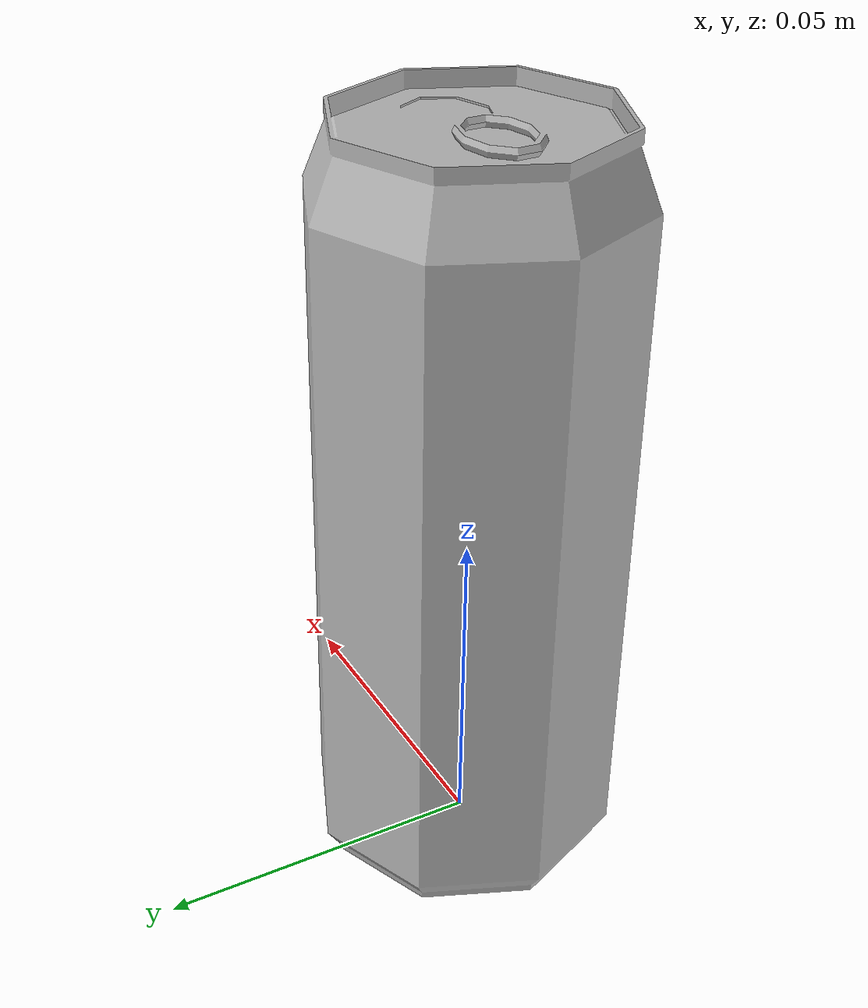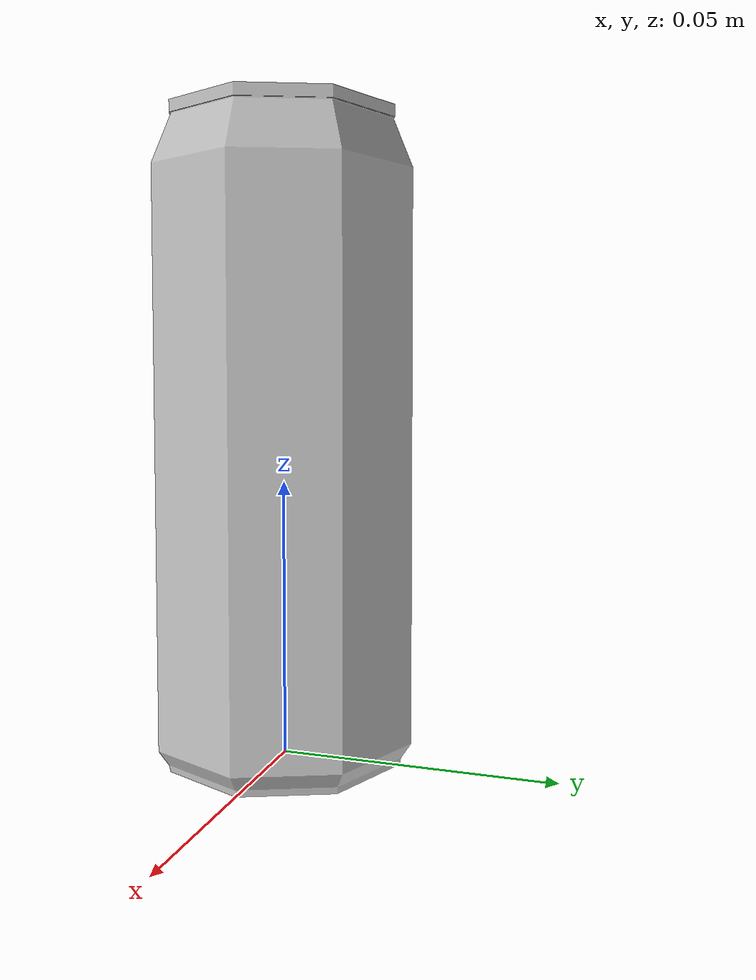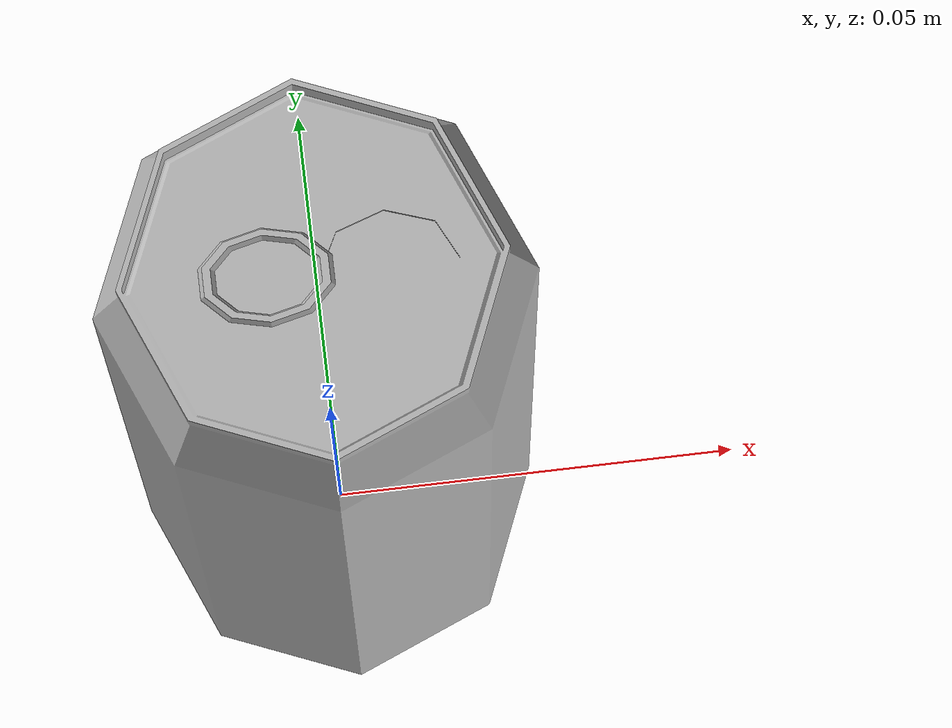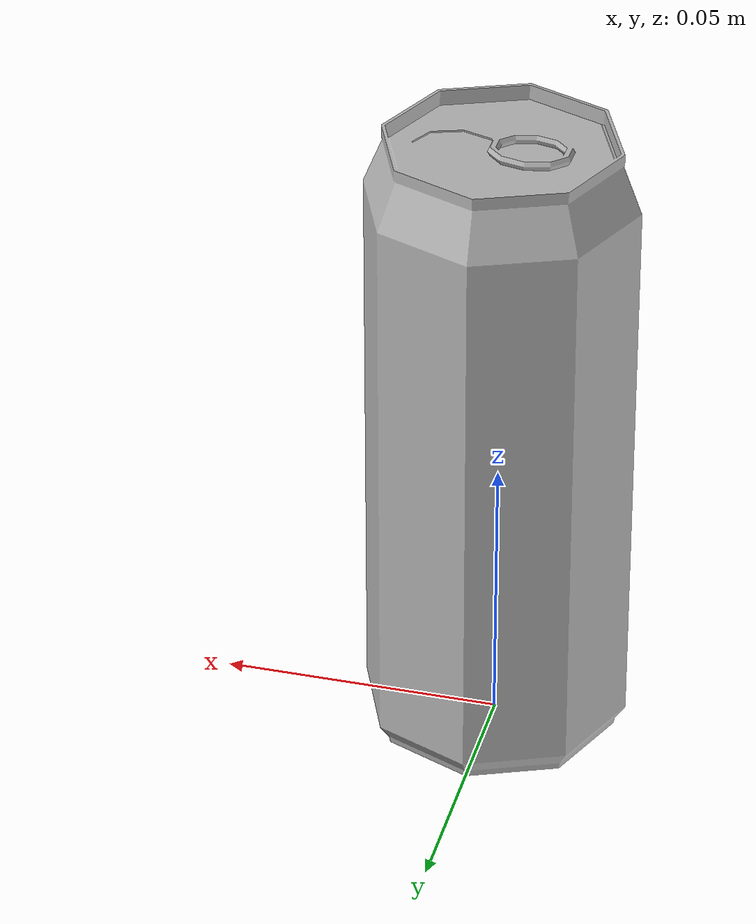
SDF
<?xml version="1.0"?>
<sdf version="1.6">
  <model name="Coke">
    <static>true</static>
    <link name="link">
      <!-- 無碰撞：純視覺 + SetModelState 驅動，與 red_block 相同機制 -->
      <visual name="vis">
        <geometry>
          <mesh>
            <uri>model://coke/meshes/coke.obj</uri>
            <!-- scale 0.8 → 高 11.6cm × 寬 4.8cm，貼圖貼圖已放在 meshes/ -->
            <scale>0.8 0.8 0.8</scale>
          </mesh>
        </geometry>
      </visual>
    </link>
  </model>
</sdf>
